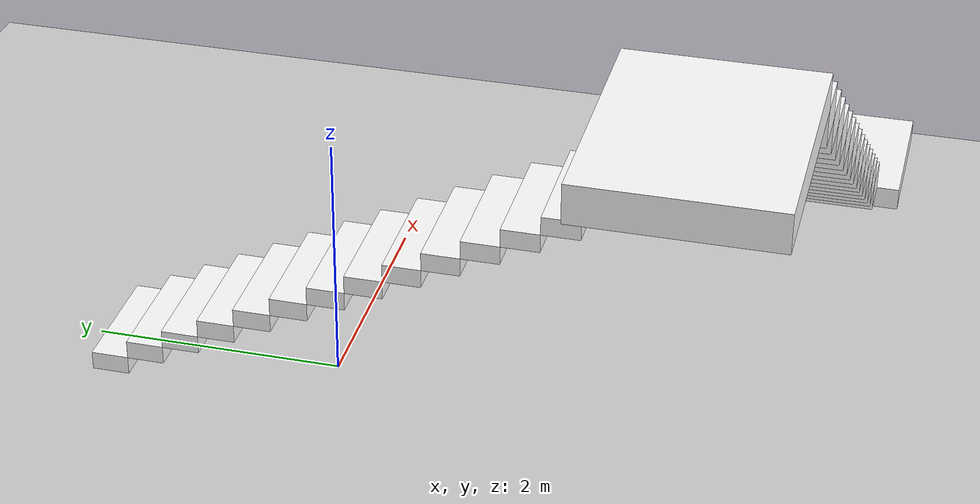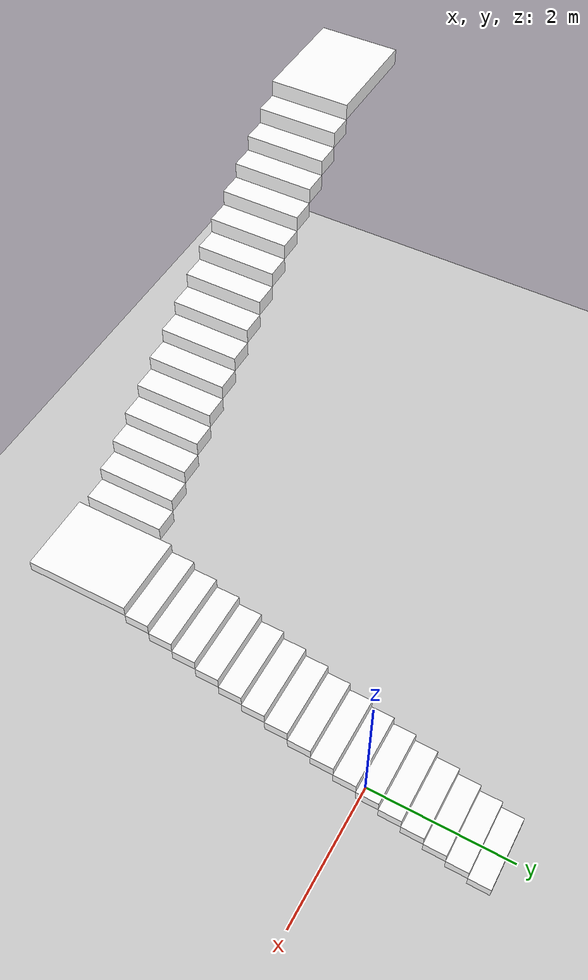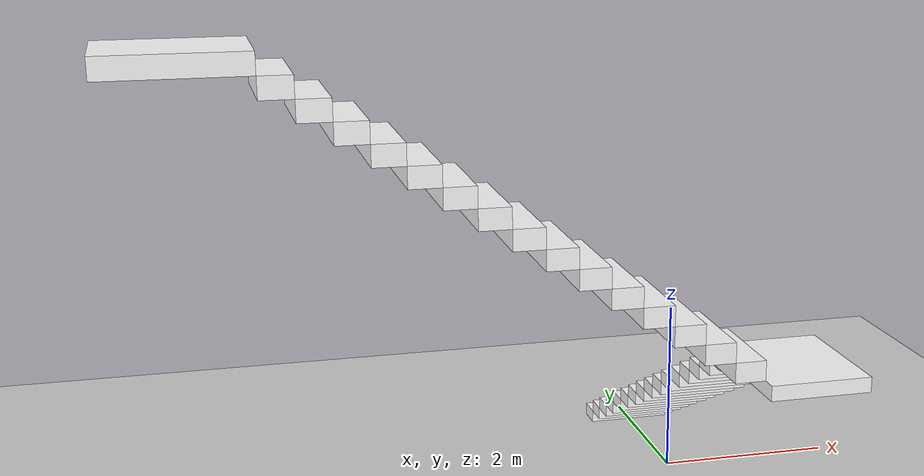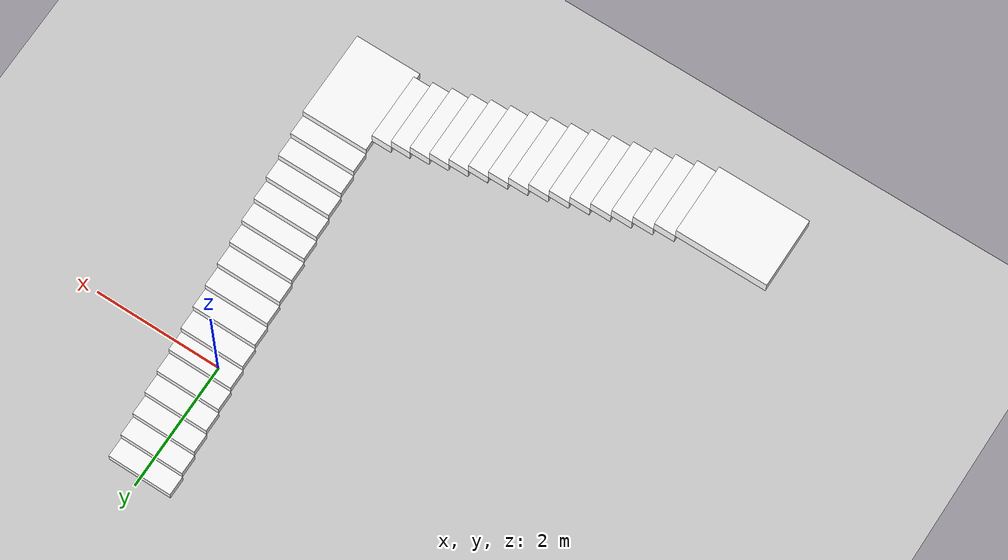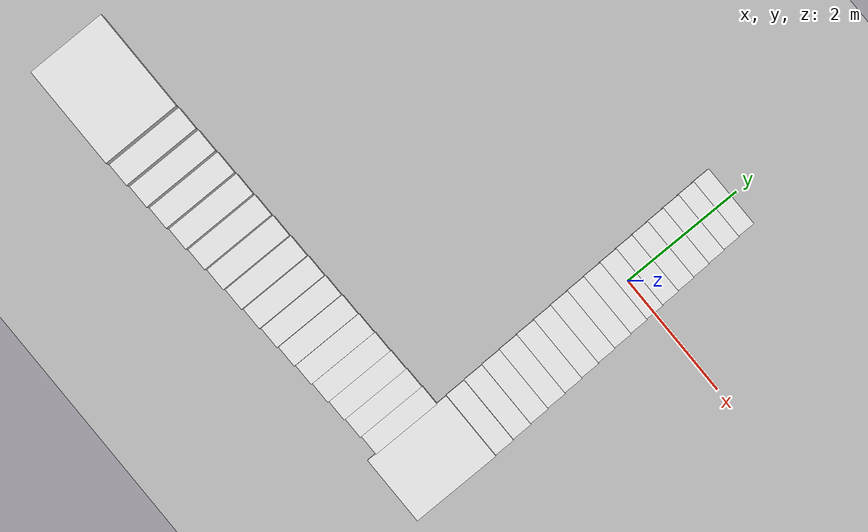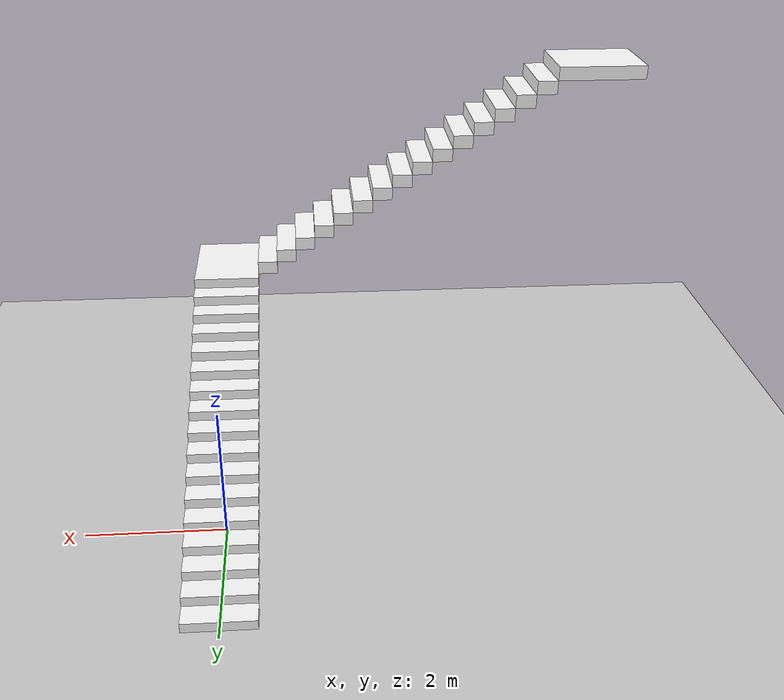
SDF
<?xml version="1.0"?>
<sdf version="1.6">
    <world name="default">
        <gui>
            <plugin name="keyboard" filename="libKeyboardGUIPlugin.so" />
        </gui>

        <include>
            <uri>model://sun</uri>
        </include>

        <include>
            <uri>model://ground_plane</uri>
        </include>

        <model name='stairs_very_simple'>
            <pose frame=''>0 0 0 0 0 0</pose>
            <link name='Stairs_3'>
                <visual name='Stairs_3_Visual_0'>
                    <pose frame=''>0 1.725 0.075 0 -0 0</pose>
                    <geometry>
                        <box>
                            <size>1 0.3 0.15</size>
                        </box>
                    </geometry>
                    <material>
                        <script>
                            <uri>model://stairs_textured/materials/scripts</uri>
                            <uri>model://stairs_textured/materials/textures</uri>
                            <name>graniteMat/Diffuse</name>
                        </script>
                        <ambient>1 1 1 1</ambient>
                    </material>
                    <meta>
                        <layer>0</layer>
                    </meta>
                </visual>
                <collision name='Stairs_3_Collision_0'>
                    <geometry>
                        <box>
                            <size>1 0.3 0.15</size>
                        </box>
                    </geometry>
                    <pose frame=''>0 1.725 0.075 0 -0 0</pose>
                </collision>
                <visual name='Stairs_3_Visual_1'>
                    <pose frame=''>0 1.425 0.225 0 -0 0</pose>
                    <geometry>
                        <box>
                            <size>1 0.3 0.15</size>
                        </box>
                    </geometry>
                    <material>
                        <script>
                            <uri>model://stairs_textured/materials/scripts</uri>
                            <uri>model://stairs_textured/materials/textures</uri>
                            <name>graniteMat/Diffuse</name>
                        </script>
                        <ambient>1 1 1 1</ambient>
                    </material>
                    <meta>
                        <layer>0</layer>
                    </meta>
                </visual>
                <collision name='Stairs_3_Collision_1'>
                    <geometry>
                        <box>
                            <size>1 0.3 0.15</size>
                        </box>
                    </geometry>
                    <pose frame=''>0 1.425 0.225 0 -0 0</pose>
                </collision>
                <visual name='Stairs_3_Visual_2'>
                    <pose frame=''>0 1.125 0.375 0 -0 0</pose>
                    <geometry>
                        <box>
                            <size>1 0.3 0.15</size>
                        </box>
                    </geometry>
                    <material>
                        <script>
                            <uri>model://stairs_textured/materials/scripts</uri>
                            <uri>model://stairs_textured/materials/textures</uri>
                            <name>graniteMat/Diffuse</name>
                        </script>
                        <ambient>1 1 1 1</ambient>
                    </material>
                    <meta>
                        <layer>0</layer>
                    </meta>
                </visual>
                <collision name='Stairs_3_Collision_2'>
                    <geometry>
                        <box>
                            <size>1 0.3 0.15</size>
                        </box>
                    </geometry>
                    <pose frame=''>0 1.125 0.375 0 -0 0</pose>
                </collision>
                <visual name='Stairs_3_Visual_3'>
                    <pose frame=''>0 .825 0.525 0 -0 0</pose>
                    <geometry>
                        <box>
                            <size>1 0.3 0.15</size>
                        </box>
                    </geometry>
                    <material>
                        <script>
                            <uri>model://stairs_textured/materials/scripts</uri>
                            <uri>model://stairs_textured/materials/textures</uri>
                            <name>graniteMat/Diffuse</name>
                        </script>
                        <ambient>1 1 1 1</ambient>
                    </material>
                    <meta>
                        <layer>0</layer>
                    </meta>
                </visual>
                <collision name='Stairs_3_Collision_3'>
                    <geometry>
                        <box>
                            <size>1 0.3 0.15</size>
                        </box>
                    </geometry>
                    <pose frame=''>0 .825 0.525 0 -0 0</pose>
                </collision>
                <visual name='Stairs_3_Visual_4'>
                    <pose frame=''>0 0.525 0.675 0 -0 0</pose>
                    <geometry>
                        <box>
                            <size>1 0.3 0.15</size>
                        </box>
                    </geometry>
                    <material>
                        <script>
                            <uri>model://stairs_textured/materials/scripts</uri>
                            <uri>model://stairs_textured/materials/textures</uri>
                            <name>graniteMat/Diffuse</name>
                        </script>
                        <ambient>1 1 1 1</ambient>
                    </material>
                    <meta>
                        <layer>0</layer>
                    </meta>
                </visual>
                <collision name='Stairs_3_Collision_4'>
                    <geometry>
                        <box>
                            <size>1 0.3 0.15</size>
                        </box>
                    </geometry>
                    <pose frame=''>0 0.525 0.675 0 -0 0</pose>
                </collision>
                <visual name='Stairs_3_Visual_5'>
                    <pose frame=''>0 0.225 0.825 0 -0 0</pose>
                    <geometry>
                        <box>
                            <size>1 0.3 0.15</size>
                        </box>
                    </geometry>
                    <material>
                        <script>
                            <uri>model://stairs_textured/materials/scripts</uri>
                            <uri>model://stairs_textured/materials/textures</uri>
                            <name>graniteMat/Diffuse</name>
                        </script>
                        <ambient>1 1 1 1</ambient>
                    </material>
                    <meta>
                        <layer>0</layer>
                    </meta>
                </visual>
                <collision name='Stairs_3_Collision_5'>
                    <geometry>
                        <box>
                            <size>1 0.3 0.15</size>
                        </box>
                    </geometry>
                    <pose frame=''>0 0.225 0.825 0 -0 0</pose>
                </collision>
                <visual name='Stairs_3_Visual_6'>
                    <pose frame=''>0 -0.075 0.975 0 -0 0</pose>
                    <geometry>
                        <box>
                            <size>1 0.3 0.15</size>
                        </box>
                    </geometry>
                    <material>
                        <script>
                            <uri>model://stairs_textured/materials/scripts</uri>
                            <uri>model://stairs_textured/materials/textures</uri>
                            <name>graniteMat/Diffuse</name>
                        </script>
                        <ambient>1 1 1 1</ambient>
                    </material>
                    <meta>
                        <layer>0</layer>
                    </meta>
                </visual>
                <collision name='Stairs_3_Collision_6'>
                    <geometry>
                        <box>
                            <size>1 0.3 0.15</size>
                        </box>
                    </geometry>
                    <pose frame=''>0 -0.075 0.975 0 -0 0</pose>
                </collision>
                <visual name='Stairs_3_Visual_7'>
                    <pose frame=''>0 -0.375 1.125 0 -0 0</pose>
                    <geometry>
                        <box>
                            <size>1 0.3 0.15</size>
                        </box>
                    </geometry>
                    <material>
                        <script>
                            <uri>model://stairs_textured/materials/scripts</uri>
                            <uri>model://stairs_textured/materials/textures</uri>
                            <name>graniteMat/Diffuse</name>
                        </script>
                        <ambient>1 1 1 1</ambient>
                    </material>
                    <meta>
                        <layer>0</layer>
                    </meta>
                </visual>
                <collision name='Stairs_3_Collision_7'>
                    <geometry>
                        <box>
                            <size>1 0.3 0.15</size>
                        </box>
                    </geometry>
                    <pose frame=''>0 -0.375 1.125 0 -0 0</pose>
                </collision>
                <visual name='Stairs_3_Visual_8'>
                    <pose frame=''>0 -0.675 1.275 0 -0 0</pose>
                    <geometry>
                        <box>
                            <size>1 0.3 0.15</size>
                        </box>
                    </geometry>
                    <material>
                        <script>
                            <uri>model://stairs_textured/materials/scripts</uri>
                            <uri>model://stairs_textured/materials/textures</uri>
                            <name>graniteMat/Diffuse</name>
                        </script>
                        <ambient>1 1 1 1</ambient>
                    </material>
                    <meta>
                        <layer>0</layer>
                    </meta>
                </visual>
                <collision name='Stairs_3_Collision_8'>
                    <geometry>
                        <box>
                            <size>1 0.3 0.15</size>
                        </box>
                    </geometry>
                    <pose frame=''>0 -0.675 1.275 0 -0 0</pose>
                </collision>
                <visual name='Stairs_3_Visual_9'>
                    <pose frame=''>0 -0.975 1.425 0 -0 0</pose>
                    <geometry>
                        <box>
                            <size>1 0.3 0.15</size>
                        </box>
                    </geometry>
                    <material>
                        <script>
                            <uri>model://stairs_textured/materials/scripts</uri>
                            <uri>model://stairs_textured/materials/textures</uri>
                            <name>graniteMat/Diffuse</name>
                        </script>
                        <ambient>1 1 1 1</ambient>
                    </material>
                    <meta>
                        <layer>0</layer>
                    </meta>
                </visual>
                <collision name='Stairs_3_Collision_9'>
                    <geometry>
                        <box>
                            <size>1 0.3 0.15</size>
                        </box>
                    </geometry>
                    <pose frame=''>0 -0.975 1.425 0 -0 0</pose>
                </collision>
                <visual name='Stairs_3_Visual_10'>
                    <pose frame=''>0 -1.275 1.575 0 -0 0</pose>
                    <geometry>
                        <box>
                            <size>1 0.3 0.15</size>
                        </box>
                    </geometry>
                    <material>
                        <script>
                            <uri>model://stairs_textured/materials/scripts</uri>
                            <uri>model://stairs_textured/materials/textures</uri>
                            <name>graniteMat/Diffuse</name>
                        </script>
                        <ambient>1 1 1 1</ambient>
                    </material>
                    <meta>
                        <layer>0</layer>
                    </meta>
                </visual>
                <collision name='Stairs_3_Collision_10'>
                    <geometry>
                        <box>
                            <size>1 0.3 0.15</size>
                        </box>
                    </geometry>
                    <pose frame=''>0 -1.275 1.575 0 -0 0</pose>
                </collision>
                <visual name='Stairs_3_Visual_11'>
                    <pose frame=''>0 -1.575 1.725 0 -0 0</pose>
                    <geometry>
                        <box>
                            <size>1 0.3 0.15</size>
                        </box>
                    </geometry>
                    <material>
                        <script>
                            <uri>model://stairs_textured/materials/scripts</uri>
                            <uri>model://stairs_textured/materials/textures</uri>
                            <name>graniteMat/Diffuse</name>
                        </script>
                        <ambient>1 1 1 1</ambient>
                    </material>
                    <meta>
                        <layer>0</layer>
                    </meta>
                </visual>
                <collision name='Stairs_3_Collision_11'>
                    <geometry>
                        <box>
                            <size>1 0.3 0.15</size>
                        </box>
                    </geometry>
                    <pose frame=''>0 -1.575 1.725 0 -0 0</pose>
                </collision>
                <visual name='Stairs_3_Visual_12'>
                    <pose frame=''>0 -1.875 1.875 0 -0 0</pose>
                    <geometry>
                        <box>
                            <size>1 0.3 0.15</size>
                        </box>
                    </geometry>
                    <material>
                        <script>
                            <uri>model://stairs_textured/materials/scripts</uri>
                            <uri>model://stairs_textured/materials/textures</uri>
                            <name>graniteMat/Diffuse</name>
                        </script>
                        <ambient>1 1 1 1</ambient>
                    </material>
                    <meta>
                        <layer>0</layer>
                    </meta>
                </visual>
                <collision name='Stairs_3_Collision_12'>
                    <geometry>
                        <box>
                            <size>1 0.3 0.15</size>
                        </box>
                    </geometry>
                    <pose frame=''>0 -1.875 1.875 0 -0 0</pose>
                </collision>
                <visual name='Stairs_3_Visual_13'>
                    <pose frame=''>0 -2.175 2.025 0 -0 0</pose>
                    <geometry>
                        <box>
                            <size>1 0.3 0.15</size>
                        </box>
                    </geometry>
                    <material>
                        <script>
                            <uri>model://stairs_textured/materials/scripts</uri>
                            <uri>model://stairs_textured/materials/textures</uri>
                            <name>graniteMat/Diffuse</name>
                        </script>
                        <ambient>1 1 1 1</ambient>
                    </material>
                    <meta>
                        <layer>0</layer>
                    </meta>
                </visual>
                <collision name='Stairs_3_Collision_13'>
                    <geometry>
                        <box>
                            <size>1 0.3 0.15</size>
                        </box>
                    </geometry>
                    <pose frame=''>0 -2.175 2.025 0 -0 0</pose>
                </collision>
                <visual name='Stairs_3_Visual_14'>
                    <pose frame=''>0 -2.475 2.175 0 -0 0</pose>
                    <geometry>
                        <box>
                            <size>1 0.3 0.15</size>
                        </box>
                    </geometry>
                    <material>
                        <script>
                            <uri>model://stairs_textured/materials/scripts</uri>
                            <uri>model://stairs_textured/materials/textures</uri>
                            <name>graniteMat/Diffuse</name>
                        </script>
                        <ambient>1 1 1 1</ambient>
                    </material>
                    <meta>
                        <layer>0</layer>
                    </meta>
                </visual>
                <collision name='Stairs_3_Collision_14'>
                    <geometry>
                        <box>
                            <size>1 0.3 0.15</size>
                        </box>
                    </geometry>
                    <pose frame=''>0 -2.475 2.175 0 -0 0</pose>
                </collision>
                <visual name='Stairs_3_Visual_15'>
                    <pose frame=''>0 -2.775 2.325 0 -0 0</pose>
                    <geometry>
                        <box>
                            <size>1 0.3 0.15</size>
                        </box>
                    </geometry>
                    <material>
                        <script>
                            <uri>model://stairs_textured/materials/scripts</uri>
                            <uri>model://stairs_textured/materials/textures</uri>
                            <name>graniteMat/Diffuse</name>
                        </script>
                        <ambient>1 1 1 1</ambient>
                    </material>
                    <meta>
                        <layer>0</layer>
                    </meta>
                </visual>
                <collision name='Stairs_3_Collision_15'>
                    <geometry>
                        <box>
                            <size>1 0.3 0.15</size>
                        </box>
                    </geometry>
                    <pose frame=''>0 -2.775 2.325 0 -0 0</pose>
                </collision>
                <visual name='Stairs_3_Visual_16'>
                    <pose frame=''>0 -3.575 2.475 0 -0 0</pose>
                    <geometry>
                        <box>
                            <size>1 1.3 0.15</size>
                        </box>
                    </geometry>
                    <material>
                        <script>
                            <uri>model://stairs_textured/materials/scripts</uri>
                            <uri>model://stairs_textured/materials/textures</uri>
                            <name>graniteMat/Diffuse</name>
                        </script>
                        <ambient>1 1 1 1</ambient>
                    </material>
                    <meta>
                        <layer>0</layer>
                    </meta>
                </visual>
                <collision name='Stairs_3_Collision_16'>
                    <geometry>
                        <box>
                            <size>1 1.3 0.15</size>
                        </box>
                    </geometry>
                    <pose frame=''>0 -3.575 2.475 0 -0 0</pose>
                </collision>

                <visual name='Stairs_3_Visual_17'>
                    <pose frame=''>-0.65 -3.575 2.65 0 -0 0</pose>
                    <geometry>
                        <box>
                            <size>0.3 1 0.2</size>
                        </box>
                    </geometry>
                    <material>
                        <script>
                            <uri>model://stairs_textured/materials/scripts</uri>
                            <uri>model://stairs_textured/materials/textures</uri>
                            <name>graniteMat/Diffuse</name>
                        </script>
                        <ambient>1 1 1 1</ambient>
                    </material>
                    <meta>
                        <layer>0</layer>
                    </meta>
                </visual>
                <collision name='Stairs_3_Collision_17'>
                    <geometry>
                        <box>
                            <size>0.3 1 0.2</size>
                        </box>
                    </geometry>
                    <pose frame=''>-0.65 -3.575 2.65 0 -0 0</pose>
                </collision>

                <visual name='Stairs_3_Visual_18'>
                    <pose frame=''>-0.95 -3.575 2.85 0 -0 0</pose>
                    <geometry>
                        <box>
                            <size>0.3 1 0.2</size>
                        </box>
                    </geometry>
                    <material>
                        <script>
                            <uri>model://stairs_textured/materials/scripts</uri>
                            <uri>model://stairs_textured/materials/textures</uri>
                            <name>graniteMat/Diffuse</name>
                        </script>
                        <ambient>1 1 1 1</ambient>
                    </material>
                    <meta>
                        <layer>0</layer>
                    </meta>
                </visual>
                <collision name='Stairs_3_Collision_18'>
                    <geometry>
                        <box>
                            <size>0.3 1 0.2</size>
                        </box>
                    </geometry>
                    <pose frame=''>-0.95 -3.575 2.85 0 -0 0</pose>
                </collision>

                <visual name='Stairs_3_Visual_19'>
                    <pose frame=''>-1.25 -3.575 3.05 0 -0 0</pose>
                    <geometry>
                        <box>
                            <size>0.3 1 0.2</size>
                        </box>
                    </geometry>
                    <material>
                        <script>
                            <uri>model://stairs_textured/materials/scripts</uri>
                            <uri>model://stairs_textured/materials/textures</uri>
                            <name>graniteMat/Diffuse</name>
                        </script>
                        <ambient>1 1 1 1</ambient>
                    </material>
                    <meta>
                        <layer>0</layer>
                    </meta>
                </visual>
                <collision name='Stairs_3_Collision_19'>
                    <geometry>
                        <box>
                            <size>0.3 1 0.2</size>
                        </box>
                    </geometry>
                    <pose frame=''>-1.25 -3.575 3.05 0 -0 0</pose>
                </collision>

                <visual name='Stairs_3_Visual_20'>
                    <pose frame=''>-1.55 -3.575 3.25 0 -0 0</pose>
                    <geometry>
                        <box>
                            <size>0.3 1 0.2</size>
                        </box>
                    </geometry>
                    <material>
                        <script>
                            <uri>model://stairs_textured/materials/scripts</uri>
                            <uri>model://stairs_textured/materials/textures</uri>
                            <name>graniteMat/Diffuse</name>
                        </script>
                        <ambient>1 1 1 1</ambient>
                    </material>
                    <meta>
                        <layer>0</layer>
                    </meta>
                </visual>
                <collision name='Stairs_3_Collision_20'>
                    <geometry>
                        <box>
                            <size>0.3 1 0.2</size>
                        </box>
                    </geometry>
                    <pose frame=''>-1.55 -3.575 3.25 0 -0 0</pose>
                </collision>

                <visual name='Stairs_3_Visual_21'>
                    <pose frame=''>-1.85 -3.575 3.45 0 -0 0</pose>
                    <geometry>
                        <box>
                            <size>0.3 1 0.2</size>
                        </box>
                    </geometry>
                    <material>
                        <script>
                            <uri>model://stairs_textured/materials/scripts</uri>
                            <uri>model://stairs_textured/materials/textures</uri>
                            <name>graniteMat/Diffuse</name>
                        </script>
                        <ambient>1 1 1 1</ambient>
                    </material>
                    <meta>
                        <layer>0</layer>
                    </meta>
                </visual>
                <collision name='Stairs_3_Collision_21'>
                    <geometry>
                        <box>
                            <size>0.3 1 0.2</size>
                        </box>
                    </geometry>
                    <pose frame=''>-1.85 -3.575 3.45 0 -0 0</pose>
                </collision>

                <visual name='Stairs_3_Visual_22'>
                    <pose frame=''>-2.15 -3.575 3.65 0 -0 0</pose>
                    <geometry>
                        <box>
                            <size>0.3 1 0.2</size>
                        </box>
                    </geometry>
                    <material>
                        <script>
                            <uri>model://stairs_textured/materials/scripts</uri>
                            <uri>model://stairs_textured/materials/textures</uri>
                            <name>graniteMat/Diffuse</name>
                        </script>
                        <ambient>1 1 1 1</ambient>
                    </material>
                    <meta>
                        <layer>0</layer>
                    </meta>
                </visual>
                <collision name='Stairs_3_Collision_22'>
                    <geometry>
                        <box>
                            <size>0.3 1 0.2</size>
                        </box>
                    </geometry>
                    <pose frame=''>-2.15 -3.575 3.65 0 -0 0</pose>
                </collision>

                <visual name='Stairs_3_Visual_23'>
                    <pose frame=''>-2.45 -3.575 3.85 0 -0 0</pose>
                    <geometry>
                        <box>
                            <size>0.3 1 0.2</size>
                        </box>
                    </geometry>
                    <material>
                        <script>
                            <uri>model://stairs_textured/materials/scripts</uri>
                            <uri>model://stairs_textured/materials/textures</uri>
                            <name>graniteMat/Diffuse</name>
                        </script>
                        <ambient>1 1 1 1</ambient>
                    </material>
                    <meta>
                        <layer>0</layer>
                    </meta>
                </visual>
                <collision name='Stairs_3_Collision_23'>
                    <geometry>
                        <box>
                            <size>0.3 1 0.2</size>
                        </box>
                    </geometry>
                    <pose frame=''>-2.45 -3.575 3.85 0 -0 0</pose>
                </collision>

                <visual name='Stairs_3_Visual_24'>
                    <pose frame=''>-2.75 -3.575 4.05 0 -0 0</pose>
                    <geometry>
                        <box>
                            <size>0.3 1 0.2</size>
                        </box>
                    </geometry>
                    <material>
                        <script>
                            <uri>model://stairs_textured/materials/scripts</uri>
                            <uri>model://stairs_textured/materials/textures</uri>
                            <name>graniteMat/Diffuse</name>
                        </script>
                        <ambient>1 1 1 1</ambient>
                    </material>
                    <meta>
                        <layer>0</layer>
                    </meta>
                </visual>
                <collision name='Stairs_3_Collision_24'>
                    <geometry>
                        <box>
                            <size>0.3 1 0.2</size>
                        </box>
                    </geometry>
                    <pose frame=''>-2.75 -3.575 4.05 0 -0 0</pose>
                </collision>

                <visual name='Stairs_3_Visual_25'>
                    <pose frame=''>-3.05 -3.575 4.25 0 -0 0</pose>
                    <geometry>
                        <box>
                            <size>0.3 1 0.2</size>
                        </box>
                    </geometry>
                    <material>
                        <script>
                            <uri>model://stairs_textured/materials/scripts</uri>
                            <uri>model://stairs_textured/materials/textures</uri>
                            <name>graniteMat/Diffuse</name>
                        </script>
                        <ambient>1 1 1 1</ambient>
                    </material>
                    <meta>
                        <layer>0</layer>
                    </meta>
                </visual>
                <collision name='Stairs_3_Collision_25'>
                    <geometry>
                        <box>
                            <size>0.3 1 0.2</size>
                        </box>
                    </geometry>
                    <pose frame=''>-3.05 -3.575 4.25 0 -0 0</pose>
                </collision>

                <visual name='Stairs_3_Visual_26'>
                    <pose frame=''>-3.35 -3.575 4.45 0 -0 0</pose>
                    <geometry>
                        <box>
                            <size>0.3 1 0.2</size>
                        </box>
                    </geometry>
                    <material>
                        <script>
                            <uri>model://stairs_textured/materials/scripts</uri>
                            <uri>model://stairs_textured/materials/textures</uri>
                            <name>graniteMat/Diffuse</name>
                        </script>
                        <ambient>1 1 1 1</ambient>
                    </material>
                    <meta>
                        <layer>0</layer>
                    </meta>
                </visual>
                <collision name='Stairs_3_Collision_26'>
                    <geometry>
                        <box>
                            <size>0.3 1 0.2</size>
                        </box>
                    </geometry>
                    <pose frame=''>-3.35 -3.575 4.45 0 -0 0</pose>
                </collision>

                <visual name='Stairs_3_Visual_27'>
                    <pose frame=''>-3.65 -3.575 4.65 0 -0 0</pose>
                    <geometry>
                        <box>
                            <size>0.3 1 0.2</size>
                        </box>
                    </geometry>
                    <material>
                        <script>
                            <uri>model://stairs_textured/materials/scripts</uri>
                            <uri>model://stairs_textured/materials/textures</uri>
                            <name>graniteMat/Diffuse</name>
                        </script>
                        <ambient>1 1 1 1</ambient>
                    </material>
                    <meta>
                        <layer>0</layer>
                    </meta>
                </visual>
                <collision name='Stairs_3_Collision_27'>
                    <geometry>
                        <box>
                            <size>0.3 1 0.2</size>
                        </box>
                    </geometry>
                    <pose frame=''>-3.65 -3.575 4.65 0 -0 0</pose>
                </collision>

                <visual name='Stairs_3_Visual_28'>
                    <pose frame=''>-3.95 -3.575 4.85 0 -0 0</pose>
                    <geometry>
                        <box>
                            <size>0.3 1 0.2</size>
                        </box>
                    </geometry>
                    <material>
                        <script>
                            <uri>model://stairs_textured/materials/scripts</uri>
                            <uri>model://stairs_textured/materials/textures</uri>
                            <name>graniteMat/Diffuse</name>
                        </script>
                        <ambient>1 1 1 1</ambient>
                    </material>
                    <meta>
                        <layer>0</layer>
                    </meta>
                </visual>
                <collision name='Stairs_3_Collision_28'>
                    <geometry>
                        <box>
                            <size>0.3 1 0.2</size>
                        </box>
                    </geometry>
                    <pose frame=''>-3.95 -3.575 4.85 0 -0 0</pose>
                </collision>

                <visual name='Stairs_3_Visual_29'>
                    <pose frame=''>-4.25 -3.575 5.05 0 -0 0</pose>
                    <geometry>
                        <box>
                            <size>0.3 1 0.2</size>
                        </box>
                    </geometry>
                    <material>
                        <script>
                            <uri>model://stairs_textured/materials/scripts</uri>
                            <uri>model://stairs_textured/materials/textures</uri>
                            <name>graniteMat/Diffuse</name>
                        </script>
                        <ambient>1 1 1 1</ambient>
                    </material>
                    <meta>
                        <layer>0</layer>
                    </meta>
                </visual>
                <collision name='Stairs_3_Collision_29'>
                    <geometry>
                        <box>
                            <size>0.3 1 0.2</size>
                        </box>
                    </geometry>
                    <pose frame=''>-4.25 -3.575 5.05 0 -0 0</pose>
                </collision>

                <visual name='Stairs_3_Visual_30'>
                    <pose frame=''>-4.55 -3.575 5.25 0 -0 0</pose>
                    <geometry>
                        <box>
                            <size>0.3 1 0.2</size>
                        </box>
                    </geometry>
                    <material>
                        <script>
                            <uri>model://stairs_textured/materials/scripts</uri>
                            <uri>model://stairs_textured/materials/textures</uri>
                            <name>graniteMat/Diffuse</name>
                        </script>
                        <ambient>1 1 1 1</ambient>
                    </material>
                    <meta>
                        <layer>0</layer>
                    </meta>
                </visual>
                <collision name='Stairs_3_Collision_30'>
                    <geometry>
                        <box>
                            <size>0.3 1 0.2</size>
                        </box>
                    </geometry>
                    <pose frame=''>-4.55 -3.575 5.25 0 -0 0</pose>
                </collision>

                <visual name='Stairs_3_Visual_31'>
                    <pose frame=''>-4.85 -3.575 5.45 0 -0 0</pose>
                    <geometry>
                        <box>
                            <size>0.3 1 0.2</size>
                        </box>
                    </geometry>
                    <material>
                        <script>
                            <uri>model://stairs_textured/materials/scripts</uri>
                            <uri>model://stairs_textured/materials/textures</uri>
                            <name>graniteMat/Diffuse</name>
                        </script>
                        <ambient>1 1 1 1</ambient>
                    </material>
                    <meta>
                        <layer>0</layer>
                    </meta>
                </visual>
                <collision name='Stairs_3_Collision_31'>
                    <geometry>
                        <box>
                            <size>0.3 1 0.2</size>
                        </box>
                    </geometry>
                    <pose frame=''>-4.85 -3.575 5.45 0 -0 0</pose>
                </collision>

                <visual name='Stairs_3_Visual_32'>
                    <pose frame=''>-5.65 -3.575 5.65 0 -0 0</pose>
                    <geometry>
                        <box>
                            <size>1.3 1 0.2</size>
                        </box>
                    </geometry>
                    <material>
                        <script>
                            <uri>model://stairs_textured/materials/scripts</uri>
                            <uri>model://stairs_textured/materials/textures</uri>
                            <name>graniteMat/Diffuse</name>
                        </script>
                        <ambient>1 1 1 1</ambient>
                    </material>
                    <meta>
                        <layer>0</layer>
                    </meta>
                </visual>
                <collision name='Stairs_3_Collision_32'>
                    <geometry>
                        <box>
                            <size>1.3 1 0.2</size>
                        </box>
                    </geometry>
                    <pose frame=''>-5.65 -3.575 5.65 0 -0 0</pose>
                </collision>

            </link>
            <static>1</static>
        </model>

    </world>
</sdf>
